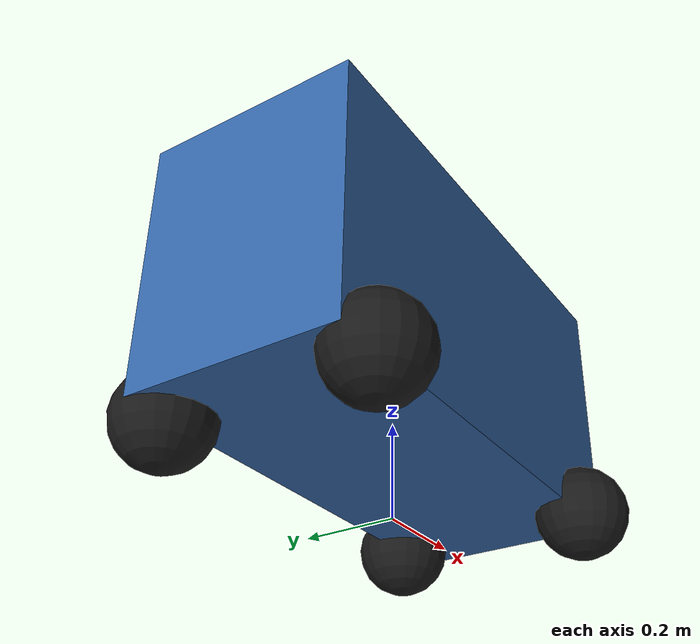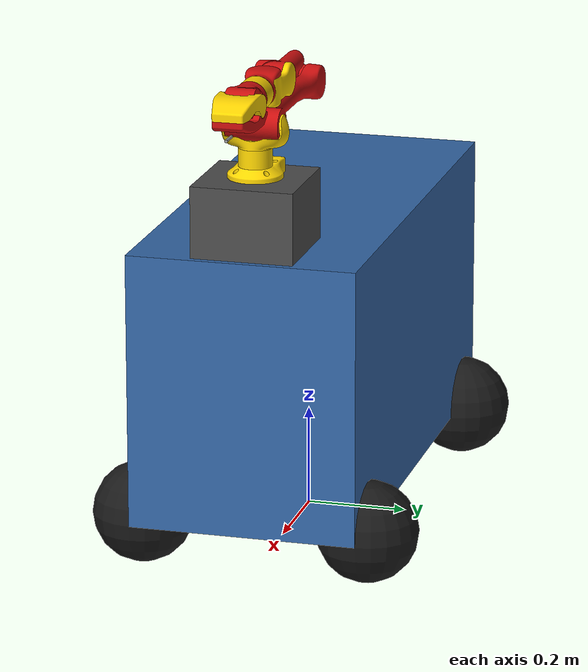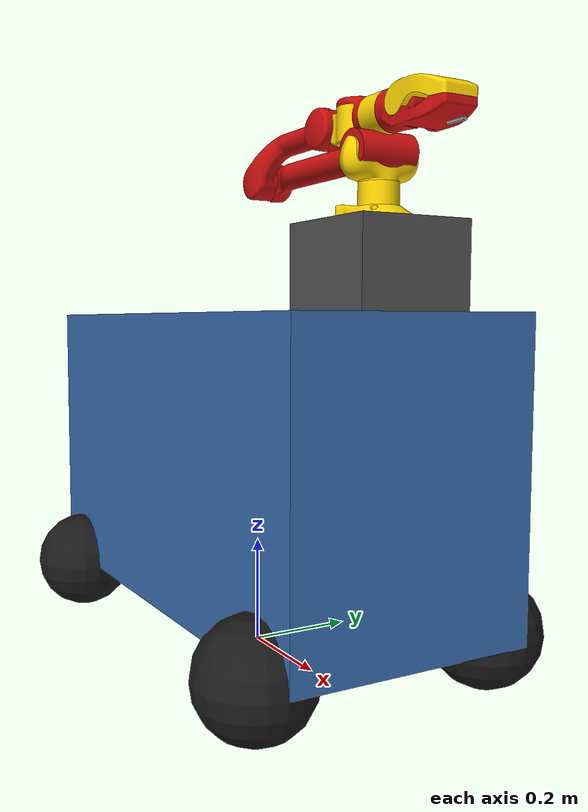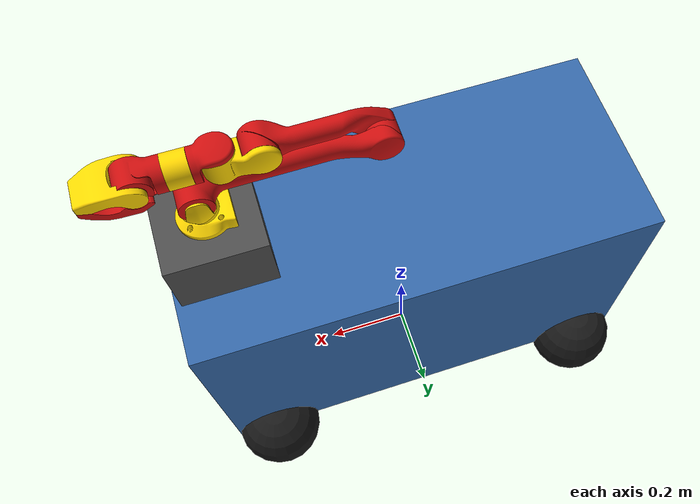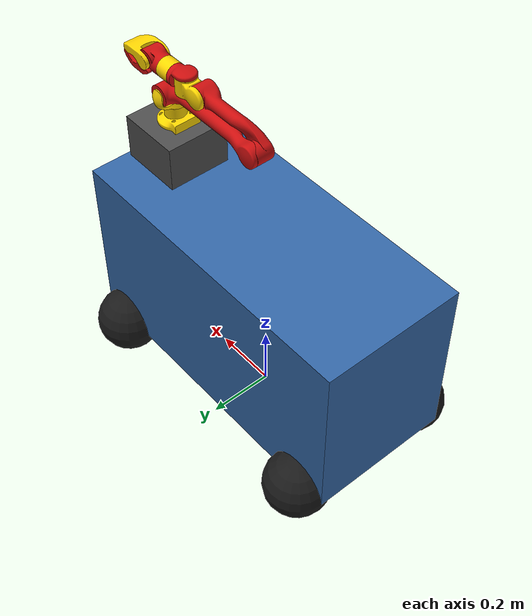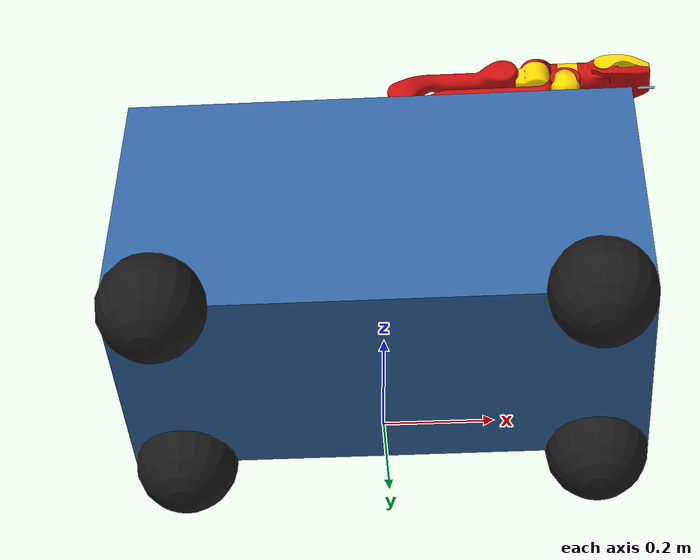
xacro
<?xml version="1.0"?>
<robot name="mobile_z1" xmlns:xacro="http://www.ros.org/wiki/xacro">

  <xacro:property name="default_mount_height"  value="0.14"/>

  <xacro:arg name="controllers_yaml"  default="/tmp/mobile_z1_controllers.yaml"/>
  <xacro:arg name="namespace"         default="/robot"/>
  <xacro:arg name="cmd_vel_topic"     default="cmd_vel"/>
  <xacro:arg name="cameras_on"        default="false"/>

  <!-- 1. Платформа -->
  <xacro:include filename="$(find mobile_base_model)/urdf/mobile_base_macro.urdf.xacro"/>
  <xacro:mobile_base prefix="" mount_height="${default_mount_height}" cameras_on="$(arg cameras_on)"/>

  <!-- 2. Z1 на крышке -->
  <xacro:include filename="$(find z1_model)/urdf/z1_arm_macro.urdf.xacro"/>
  <xacro:z1_arm prefix=""
                parent="z1_mount"
                xyz="0 0 ${default_mount_height / 2.0}" rpy="0 0 0"
                use_gripper="true"/>

  <!-- 3. ros2_control блок ТОЛЬКО для Z1 -->
  <xacro:z1_ros2_control prefix="" use_gripper="true" name="Z1Hardware"/>

  <!-- 4. gz_ros2_control: 7 джойнтов Z1 -->
  <gazebo>
    <plugin name="gz_ros2_control::GazeboSimROS2ControlPlugin"
            filename="gz_ros2_control-system">
      <parameters>$(arg controllers_yaml)</parameters>
      <ros>
        <namespace>$(arg namespace)</namespace>
      </ros>
    </plugin>
  </gazebo>

  <!-- 5. VelocityControl + OdometryPublisher для платформы -->
  <xacro:velocity_control_plugin
      prefix=""
      topic="$(arg cmd_vel_topic)"
      odom_topic="odom"
      tf_topic="tf"
      frame_id="odom"
      child_frame_id="base_footprint"/>

</robot>

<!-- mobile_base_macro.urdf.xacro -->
<robot xmlns:xacro="http://www.ros.org/wiki/xacro">

  <!-- ====== Параметры по умолчанию ====== -->
  <xacro:property name="default_base_l"        value="1.00"/>
  <xacro:property name="default_base_w"        value="0.45"/>
  <xacro:property name="default_base_h"        value="0.545"/>
  <xacro:property name="default_base_mass"     value="30.0"/>
  <xacro:property name="default_wheel_radius"  value="0.10"/>
  <xacro:property name="default_wheel_thick"   value="0.050"/>
  <xacro:property name="default_wheel_mass"    value="1.0"/>
  <xacro:property name="default_wheel_x"       value="${default_base_l / 2.0 - default_wheel_radius}"/>
  <xacro:property name="default_wheel_y"       value="${default_base_w / 2.0}"/>
  <xacro:property name="default_mount_height"  value="0.14"/>
  <xacro:property name="default_mount_lingth"  value="0.2"/>
  <xacro:property name="default_mount_x"       value="${(default_base_l - default_mount_lingth) / 2.0}"/>

  <xacro:property name="lidar_offset_x"       value="0.013"/>
  <xacro:property name="default_cameras_on"   value="false"/>

  <!-- ====== Локальный макрос: кастер-шарик с нулевым трением ====== -->

  <xacro:macro name="caster_ball" params="prefix name xyz mass radius">
    <xacro:property name="ball_inertia" value="${ (2/5) * mass * radius * radius }"/>
    <link name="${prefix}caster_${name}">
      <visual>
        <origin xyz="0 0 0" rpy="0 0 0"/>
        <geometry>
          <sphere radius="${radius}"/>
        </geometry>
        <material name="${prefix}wheel_mat">
          <color rgba="0.10 0.10 0.10 1.0"/>
        </material>
      </visual>

      <collision>
        <geometry>
          <sphere radius="${radius}"/>
        </geometry>
        <surface>
          <friction>
            <ode>
              <mu>0.00001</mu>
              <mu2>0.00001</mu2>
            </ode>
          </friction>
        </surface>
      </collision>
      <inertial>
        <mass value="${mass}"/>
        <inertia ixx="${ball_inertia}" iyy="${ball_inertia}" izz="${ball_inertia}" ixy="0" ixz="0" iyz="0"/>
      </inertial>
    </link>
    <joint name="${prefix}caster_${name}_joint" type="fixed">
      <parent link="${prefix}base_link"/>
      <child  link="${prefix}caster_${name}"/>
      <origin xyz="${xyz}"/>
    </joint>
    <gazebo reference="${prefix}caster_${name}">
      <visual>
        <material>
          <ambient>0.05 0.05 0.05 1</ambient>
          <diffuse>0.10 0.10 0.10 1</diffuse>
        </material>
      </visual>
      <mu1>0.00001</mu1>
      <mu2>0.00001</mu2>
    </gazebo>
  </xacro:macro>

  <!-- ====== ОСНОВНОЙ МАКРОС ПЛАТФОРМЫ ====== -->
  <xacro:macro name="mobile_base"
               params="prefix:=''
                       base_l:=${default_base_l}
                       base_w:=${default_base_w}
                       base_h:=${default_base_h}
                       base_mass:=${default_base_mass}
                       wheel_radius:=${default_wheel_radius}
                       wheel_thick:=${default_wheel_thick}
                       wheel_mass:=${default_wheel_mass}
                       wheel_x:=${default_wheel_x}
                       wheel_y:=${default_wheel_y}
                       mount_height:=${default_mount_height}
                       mount_height:=${default_mount_height}
                       cameras_on:=${default_cameras_on}">

    <!-- ================== base_footprint (на полу) ================== -->
    <link name="${prefix}base_footprint"/>

    <joint name="${prefix}base_footprint_joint" type="fixed">
      <parent link="${prefix}base_footprint"/>
      <child  link="${prefix}base_link"/>
      <origin xyz="0 0 ${wheel_radius + base_h/2.0}" rpy="0 0 0"/>
    </joint>

    <!-- ================== base_link (корпус) ================== -->
    <link name="${prefix}base_link">
      <visual>
        <origin xyz="0 0 0" rpy="0 0 0"/>
        <geometry>
          <box size="${base_l} ${base_w} ${base_h}"/>
        </geometry>
        <material name="${prefix}base_mat">
          <color rgba="0.20 0.40 0.65 1.0"/>
        </material>
      </visual>
      <collision>
        <origin xyz="0 0 0" rpy="0 0 0"/>
        <geometry>
          <box size="${base_l} ${base_w} ${base_h}"/>
        </geometry>
      </collision>
      <inertial>
        <origin xyz="0 0 0" rpy="0 0 0"/>
        <mass value="${base_mass}"/>
        <inertia
          ixx="${base_mass*(base_w*base_w + base_h*base_h)/12.0}"
          iyy="${base_mass*(base_l*base_l + base_h*base_h)/12.0}"
          izz="${base_mass*(base_l*base_l + base_w*base_w)/12.0}"
          ixy="0" ixz="0" iyz="0"/>
      </inertial>
    </link>

    <gazebo reference="${prefix}base_link">
      <!-- Низкое трение корпуса по самому себе - на случай, если уголок
           коснётся земли при наклоне. -->
      <mu1>0.1</mu1>
      <mu2>0.1</mu2>
      <visual>
        <material>
          <diffuse>0.20 0.40 0.65 1</diffuse>
          <specular>0.10 0.10 0.10 1</specular>
        </material>
      </visual>
    </gazebo>

    <!-- ================== z1_mount: площадка под Z1 ================== -->
    <link name="${prefix}z1_mount">
      <visual>
        <origin xyz="0 0 0" rpy="0 0 0"/>
        <geometry>
          <box size="0.20 0.20 ${mount_height}"/>
        </geometry>
        <material name="${prefix}mount_mat">
          <color rgba="0.30 0.30 0.30 1.0"/>
        </material>
      </visual>
      <collision>
        <origin xyz="0 0 0" rpy="0 0 0"/>
        <geometry>
          <box size="0.20 0.20 ${mount_height}"/>
        </geometry>
      </collision>
      <inertial>
        <mass value="0.5"/>
        <inertia ixx="0.002" iyy="0.002" izz="0.002" ixy="0" ixz="0" iyz="0"/>
      </inertial>
    </link>

    <joint name="${prefix}z1_mount_joint" type="fixed">
      <parent link="${prefix}base_link"/>
      <child  link="${prefix}z1_mount"/>
      <origin xyz="${default_mount_x - lidar_offset_x} 0 ${base_h/2.0 + mount_height/2.0}" rpy="0 0 0"/>
    </joint>

    <!-- ================== 4 ВИЗУАЛЬНЫХ колеса ================== -->
    <xacro:property name="wheel_z_local" value="${-base_h/2.0}"/>

    <!-- ================== 3 кастера-шарика ================== -->

    <xacro:caster_ball prefix="${prefix}" name="fl"
                       xyz="${ wheel_x}  ${ wheel_y} ${-base_h / 2.0}"
                       mass="${wheel_mass}" radius="${wheel_radius}"/>
    <xacro:caster_ball prefix="${prefix}" name="fr"
                       xyz="${ wheel_x} ${-wheel_y} ${-base_h / 2.0}"
                       mass="${wheel_mass}" radius="${wheel_radius}"/>

    <xacro:caster_ball prefix="${prefix}" name="rl"
                       xyz="${-wheel_x}  ${ wheel_y} ${-base_h / 2.0}"
                       mass="${wheel_mass}" radius="${wheel_radius}"/>
    <xacro:caster_ball prefix="${prefix}" name="rr"
                       xyz="${-wheel_x} ${-wheel_y} ${-base_h / 2.0}"
                       mass="${wheel_mass}" radius="${wheel_radius}"/>

    <!-- Добавляем камеру -->
    <xacro:if value="${cameras_on == 'true'}">
      <link name="${prefix}my_camera_link">
        <visual>
          <geometry><box size="0.01 0.01 0.01"/></geometry>
        </visual>
        <collision>
          <geometry><box size="0.01 0.01 0.01"/></geometry>
        </collision>
        <inertial>
          <mass value="0.01"/>
          <origin xyz="0 0 0"/>
          <inertia ixx="1e-5" ixy="0" ixz="0" iyy="1e-5" iyz="0" izz="1e-5"/>
        </inertial>
      </link>

      <joint name="${prefix}my_camera_joint" type="fixed">
        <parent link="${prefix}base_link"/>
        <child link="${prefix}my_camera_link"/>
        <origin xyz="${base_l / 2.0 - lidar_offset_x} 0.0 ${base_h / 2.0 + default_mount_height}" rpy="0 -0.837468 0"/>
      </joint>

      <link name="${prefix}my_camera_optical_frame"/>
      <joint name="${prefix}my_camera_optical_joint" type="fixed">
        <parent link="${prefix}my_camera_link"/>
        <child link="${prefix}my_camera_optical_frame"/>
        <origin xyz="0 0 0" rpy="-1.5708 0 -1.5708"/>
      </joint>

      <gazebo reference="${prefix}my_camera_link">
        <sensor name="${prefix}sensor_my_camera" type="camera">
          <always_on>1</always_on>
          <update_rate>30</update_rate>
          <visualize>true</visualize>
          <topic>${prefix}sensor_my_camera/raw_img</topic>
          <camera_info_topic>${prefix}my_camera_info</camera_info_topic>
          <optical_frame_id>${prefix}my_camera_optical_frame</optical_frame_id>
          <camera>
            <vertical_fov>0.733038</vertical_fov>
            <image>
              <width>2160</width>
              <height>3840</height>
              <format>R8G8B8</format>
            </image>
            <clip>
              <near>0.3</near>
              <far>20.0</far>
            </clip>
          </camera>
        </sensor>
      </gazebo>
    </xacro:if>

  </xacro:macro>

  <xacro:macro name="velocity_control_plugin"
               params="prefix:=''
                       topic:='cmd_vel'
                       odom_topic:='odom'
                       tf_topic:='tf'
                       frame_id:='odom'
                       child_frame_id:='base_footprint'
                       odom_pub_frequency:='50'">
    <gazebo>
      <!-- 1. VelocityControl: cmd_vel напрямую в скорость base_link -->
      <plugin filename="gz-sim-velocity-control-system"
              name="gz::sim::systems::VelocityControl">
        <topic>${topic}</topic>
      </plugin>

      <!-- 2. OdometryPublisher: реальная поза base_link -> /odom + TF -->
      <plugin filename="gz-sim-odometry-publisher-system"
              name="gz::sim::systems::OdometryPublisher">
        <odom_frame>${frame_id}</odom_frame>
        <robot_base_frame>${prefix}base_link</robot_base_frame>
        <odom_publish_frequency>${odom_pub_frequency}</odom_publish_frequency>
        <odom_topic>${odom_topic}</odom_topic>
        <tf_topic>${tf_topic}</tf_topic>
        <dimensions>3</dimensions>
      </plugin>
    </gazebo>
  </xacro:macro>

</robot>

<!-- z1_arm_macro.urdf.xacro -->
<robot xmlns:xacro="http://www.ros.org/wiki/xacro">

  <!-- Параметры и материалы Z1 -->
  <xacro:include filename="const.xacro"/>
  <xacro:include filename="materials.xacro"/>
  <xacro:include filename="transmission.xacro"/>

  <xacro:macro name="z1_arm"
               params="prefix:='' parent:='world' xyz:='0 0 0' rpy:='0 0 0'
                       use_gripper:=true">

    <!-- Жёсткое крепление link00 к parent (заменяет старый base_static_joint от world). -->
    <joint name="${prefix}base_static_joint" type="fixed">
      <origin xyz="${xyz}" rpy="${rpy}"/>
      <parent link="${parent}"/>
      <child  link="${prefix}link00"/>
    </joint>

    <link name="${prefix}link00">
      <visual>
        <origin rpy="0 0 0" xyz="0 0 0"/>
        <geometry>
          <mesh filename="$(find z1_model)/meshes/visual/z1_Link00.dae" scale="1 1 1"/>
        </geometry>
        <material name="iron_gold"/>
      </visual>
      <collision>
        <geometry>
          <cylinder length="${motor_height}" radius="${motor_diameter}"/>
        </geometry>
        <origin rpy="0 0 0" xyz="0 0 ${motor_height/2.0}"/>
      </collision>
      <inertial>
        <origin rpy="0 0 0" xyz="${L00_ComX} ${L00_ComY} ${L00_ComZ}"/>
        <mass value="${L00_Mass}"/>
        <inertia ixx="${L00_Ixx}" ixy="${L00_Ixy}" ixz="${L00_Ixz}"
                 iyy="${L00_Iyy}" iyz="${L00_Iyz}" izz="${L00_Izz}"/>
      </inertial>
    </link>

    <joint name="${prefix}joint1" type="revolute">
      <origin rpy="0 0 0" xyz="0 0 0.0585"/>
      <parent link="${prefix}link00"/>
      <child  link="${prefix}link01"/>
      <axis xyz="0 0 1"/>
      <dynamics damping="${jointDamping}" friction="${jointFriction}"/>
      <limit effort="${torqueMax}" velocity="${velocityMax}"
             lower="${joint1_PositionMin}" upper="${joint1_PositionMax}"/>
    </joint>

    <link name="${prefix}link01">
      <visual>
        <origin rpy="0 0 0" xyz="0 0 0"/>
        <geometry>
          <mesh filename="$(find z1_model)/meshes/visual/z1_Link01.dae" scale="1 1 1"/>
        </geometry>
        <material name="iron_gold"/>
      </visual>
      <inertial>
        <origin rpy="0 0 0" xyz="${L01_ComX} ${L01_ComY} ${L01_ComZ}"/>
        <mass value="${L01_Mass}"/>
        <inertia ixx="${L01_Ixx}" ixy="${L01_Ixy}" ixz="${L01_Ixz}"
                 iyy="${L01_Iyy}" iyz="${L01_Iyz}" izz="${L01_Izz}"/>
      </inertial>
    </link>

    <joint name="${prefix}joint2" type="revolute">
      <origin rpy="0 0 0" xyz="0 0 0.045"/>
      <parent link="${prefix}link01"/>
      <child  link="${prefix}link02"/>
      <axis xyz="0 1 0"/>
      <dynamics damping="${2*jointDamping}" friction="${2*jointFriction}"/>
      <limit effort="${2*torqueMax}" velocity="${velocityMax}"
             lower="${joint2_PositionMin}" upper="${joint2_PositionMax}"/>
    </joint>

    <link name="${prefix}link02">
      <visual>
        <origin rpy="0 0 0" xyz="0 0 0"/>
        <geometry>
          <mesh filename="$(find z1_model)/meshes/visual/z1_Link02.dae" scale="1 1 1"/>
        </geometry>
        <material name="iron_red"/>
      </visual>
      <collision>
        <geometry><cylinder length="${2.0*motor_height}" radius="${motor_diameter}"/></geometry>
        <origin rpy="${PI/2.0} 0 0" xyz="0 0 0"/>
      </collision>
      <collision>
        <geometry><cylinder length="${arm1_height}" radius="${arm1_diameter}"/></geometry>
        <origin rpy="0 ${PI/2.0} 0" xyz="${-0.045-arm1_height/2.0} 0 0"/>
      </collision>
      <collision>
        <geometry><cylinder length="${motor_height}" radius="${motor_diameter}"/></geometry>
        <origin rpy="${PI/2.0} 0 0" xyz="-0.35 0 0"/>
      </collision>
      <inertial>
        <origin rpy="0 0 0" xyz="${L02_ComX} ${L02_ComY} ${L02_ComZ}"/>
        <mass value="${L02_Mass}"/>
        <inertia ixx="${L02_Ixx}" ixy="${L02_Ixy}" ixz="${L02_Ixz}"
                 iyy="${L02_Iyy}" iyz="${L02_Iyz}" izz="${L02_Izz}"/>
      </inertial>
    </link>

    <joint name="${prefix}joint3" type="revolute">
      <origin rpy="0 0 0" xyz="-0.35 0 0"/>
      <parent link="${prefix}link02"/>
      <child  link="${prefix}link03"/>
      <axis xyz="0 1 0"/>
      <dynamics damping="${jointDamping}" friction="${jointFriction}"/>
      <limit effort="${torqueMax}" velocity="${velocityMax}"
             lower="${joint3_PositionMin}" upper="${joint3_PositionMax}"/>
    </joint>

    <link name="${prefix}link03">
      <visual>
        <origin rpy="0 0 0" xyz="0 0 0"/>
        <geometry>
          <mesh filename="$(find z1_model)/meshes/visual/z1_Link03.dae" scale="1 1 1"/>
        </geometry>
        <material name="iron_red"/>
      </visual>
      <collision>
        <geometry><cylinder length="${arm2_height-0.01}" radius="${arm2_diameter}"/></geometry>
        <origin rpy="0 ${PI/2.0} 0" xyz="${0.065+arm2_height/2.0} 0 0.055"/>
      </collision>
      <collision>
        <geometry><cylinder length="0.059" radius="${motor_diameter}"/></geometry>
        <origin rpy="0 ${PI/2.0} ${PI/2.0}" xyz="${0.065+0.185-0.059/2.0} 0 0.055"/>
      </collision>
      <inertial>
        <origin rpy="0 0 0" xyz="${L03_ComX} ${L03_ComY} ${L03_ComZ}"/>
        <mass value="${L03_Mass}"/>
        <inertia ixx="${L03_Ixx}" ixy="${L03_Ixy}" ixz="${L03_Ixz}"
                 iyy="${L03_Iyy}" iyz="${L03_Iyz}" izz="${L03_Izz}"/>
      </inertial>
    </link>

    <joint name="${prefix}joint4" type="revolute">
      <origin rpy="0 0 0" xyz="0.218 0 0.057"/>
      <parent link="${prefix}link03"/>
      <child  link="${prefix}link04"/>
      <axis xyz="0 1 0"/>
      <dynamics damping="${jointDamping}" friction="${jointFriction}"/>
      <limit effort="${torqueMax}" velocity="${velocityMax}"
             lower="${joint4_PositionMin}" upper="${joint4_PositionMax}"/>
    </joint>

    <link name="${prefix}link04">
      <visual>
        <origin rpy="0 0 0" xyz="0 0 0"/>
        <geometry>
          <mesh filename="$(find z1_model)/meshes/visual/z1_Link04.dae" scale="1 1 1"/>
        </geometry>
        <material name="iron_gold"/>
      </visual>
      <collision>
        <geometry><cylinder length="${motor_height + 2*0.008}" radius="${motor_diameter}"/></geometry>
        <origin rpy="0 0 0" xyz="0.072 0 0"/>
      </collision>
      <inertial>
        <origin rpy="0 0 0" xyz="${L04_ComX} ${L04_ComY} ${L04_ComZ}"/>
        <mass value="${L04_Mass}"/>
        <inertia ixx="${L04_Ixx}" ixy="${L04_Ixy}" ixz="${L04_Ixz}"
                 iyy="${L04_Iyy}" iyz="${L04_Iyz}" izz="${L04_Izz}"/>
      </inertial>
    </link>

    <joint name="${prefix}joint5" type="revolute">
      <origin rpy="0 0 0" xyz="0.07 0.0 0.0"/>
      <parent link="${prefix}link04"/>
      <child  link="${prefix}link05"/>
      <axis xyz="0 0 1"/>
      <dynamics damping="${jointDamping}" friction="${jointFriction}"/>
      <limit effort="${torqueMax}" velocity="${velocityMax}"
             lower="${joint5_PositionMin}" upper="${joint5_PositionMax}"/>
    </joint>

    <link name="${prefix}link05">
      <visual>
        <origin rpy="0 0 0" xyz="0 0 0"/>
        <geometry>
          <mesh filename="$(find z1_model)/meshes/visual/z1_Link05.dae" scale="1 1 1"/>
        </geometry>
        <material name="iron_red"/>
      </visual>
      <inertial>
        <origin rpy="0 0 0" xyz="${L05_ComX} ${L05_ComY} ${L05_ComZ}"/>
        <mass value="${L05_Mass}"/>
        <inertia ixx="${L05_Ixx}" ixy="${L05_Ixy}" ixz="${L05_Ixz}"
                 iyy="${L05_Iyy}" iyz="${L05_Iyz}" izz="${L05_Izz}"/>
      </inertial>
    </link>

    <joint name="${prefix}joint6" type="revolute">
      <origin rpy="0 0 0" xyz="0.0492 0.0 0.0"/>
      <parent link="${prefix}link05"/>
      <child  link="${prefix}link06"/>
      <axis xyz="1 0 0"/>
      <dynamics damping="${jointDamping}" friction="${jointFriction}"/>
      <limit effort="${torqueMax}" velocity="${velocityMax}"
             lower="${joint6_PositionMin}" upper="${joint6_PositionMax}"/>
    </joint>

    <link name="${prefix}link06">
      <visual>
        <origin rpy="0 0 0" xyz="0 0 0"/>
        <geometry>
          <mesh filename="$(find z1_model)/meshes/visual/z1_Link06.dae" scale="1 1 1"/>
        </geometry>
        <material name="iron_gold"/>
      </visual>
      <collision>
        <geometry><cylinder length="${motor_height}" radius="${motor_diameter}"/></geometry>
        <origin rpy="0 ${PI/2.0} 0" xyz="${motor_height/2.0} 0 0"/>
      </collision>
      <inertial>
        <origin rpy="0 0 0" xyz="${L06_ComX} ${L06_ComY} ${L06_ComZ}"/>
        <mass value="${L06_Mass}"/>
        <inertia ixx="${L06_Ixx}" ixy="${L06_Ixy}" ixz="${L06_Ixz}"
                 iyy="${L06_Iyy}" iyz="${L06_Iyz}" izz="${L06_Izz}"/>
      </inertial>
    </link>

    <!-- Захват Unitree (опционально) -->
    <xacro:if value="${use_gripper}">
      <joint name="${prefix}gripperStator_joint" type="fixed">
        <origin rpy="0 0 0" xyz="0.051 0.0 0.0"/>
        <parent link="${prefix}link06"/>
        <child  link="${prefix}gripperStator"/>
      </joint>

      <link name="${prefix}gripperStator">
        <visual>
          <geometry>
            <mesh filename="$(find z1_model)/meshes/visual/stl_models/z1_GripperStator.stl" scale="1 1 1"/>
          </geometry>
          <material name="iron_red"/>
        </visual>
        <collision>
          <geometry>
            <mesh filename="$(find z1_model)/meshes/collision/z1_GripperStator.STL" scale="1 1 1"/>
          </geometry>
        </collision>
        <inertial>
          <origin rpy="0 0 0" xyz="${GripperStator_ComX} ${GripperStator_ComY} ${GripperStator_ComZ}"/>
          <mass value="${GripperStator_Mass}"/>
          <inertia ixx="${GripperStator_Ixx}" ixy="${GripperStator_Ixy}" ixz="${GripperStator_Ixz}"
                   iyy="${GripperStator_Iyy}" iyz="${GripperStator_Iyz}" izz="${GripperStator_Izz}"/>
        </inertial>
      </link>

      <!-- Нажимной элемент (Finger) -->
      <link name="z1_Gripper_finger">
        <inertial>
            <origin xyz="0.117494 0.0 -0.040887" rpy="0 0 0"/>
            <mass value="0.003286"/>
            <inertia
                ixx="0.0000000259" ixy="0.0" ixz="-0.0000000568"
                iyy="0.000001303" iyz="0.0"
                izz="0.000001293"/>
        </inertial>
        <visual>
            <origin xyz="0.139 0 -0.042" rpy="0 1.5708 0"/>
            <geometry>
                <cylinder length="0.036" radius="0.003"/>
            </geometry>
            <material name="grey"/>
        </visual>
        <collision>
            <origin xyz="0.139 0 -0.042" rpy="0 1.5708 0"/>
            <geometry>
                <!-- Рекомендуется использовать упрощенную геометрию для коллизий, но можно и stl -->
                <cylinder length="0.036" radius="0.003"/>

            </geometry>
        </collision>
      </link>

      <!-- Крепление нажимного элемента к статору схвата -->
      <joint name="gripper_stator_to_finger" type="fixed">
          <parent link="gripperStator"/> <!-- Замените на точное имя link'а вашего статора -->
          <child link="z1_Gripper_finger"/>
          <origin xyz="0 0 0" rpy="0 0 0"/> <!-- Позиции совпадают, как вы указали -->
      </joint>

      <joint name="${prefix}jointGripper" type="revolute">
        <origin rpy="0 0 0" xyz="0.049 0.0 0"/>
        <parent link="${prefix}gripperStator"/>
        <child  link="${prefix}gripperMover"/>
        <axis xyz="0 1 0"/>
        <dynamics damping="${jointDamping}" friction="${jointFriction}"/>
        <limit effort="${torqueMax}" velocity="${velocityMax}"
               lower="${Gripper_PositionMin}" upper="${Gripper_PositionMax}"/>
      </joint>

      <link name="${prefix}gripperMover">
        <visual>
          <geometry>
            <mesh filename="$(find z1_model)/meshes/visual/stl_models/z1_GripperMover.stl" scale="1 1 1"/>
          </geometry>
          <material name="iron_gold"/>
        </visual>
        <collision>
          <geometry>
            <mesh filename="$(find z1_model)/meshes/collision/z1_GripperMover.STL" scale="1 1 1"/>
          </geometry>
        </collision>
        <inertial>
          <origin rpy="0 0 0" xyz="${GripperMover_ComX} ${GripperMover_ComY} ${GripperMover_ComZ}"/>
          <mass value="${GripperMover_Mass}"/>
          <inertia ixx="${GripperMover_Ixx}" ixy="${GripperMover_Ixy}" ixz="${GripperMover_Ixz}"
                   iyy="${GripperMover_Iyy}" iyz="${GripperMover_Iyz}" izz="${GripperMover_Izz}"/>
        </inertial>
      </link>

      <xacro:motorTransmission name="${prefix}Gripper"/>
    </xacro:if>

    <xacro:motorTransmission name="${prefix}1"/>
    <xacro:motorTransmission name="${prefix}2"/>
    <xacro:motorTransmission name="${prefix}3"/>
    <xacro:motorTransmission name="${prefix}4"/>
    <xacro:motorTransmission name="${prefix}5"/>
    <xacro:motorTransmission name="${prefix}6"/>
  </xacro:macro>

  <xacro:macro name="z1_ros2_control"
               params="prefix:='' use_gripper:=true name:=Z1GazeboSystem">
    <ros2_control name="${name}" type="system">
      <hardware>
        <plugin>gz_ros2_control/GazeboSimSystem</plugin>
      </hardware>

      <xacro:joint_controller name="${prefix}joint1" initial_position="0.0"/>
      <xacro:joint_controller name="${prefix}joint2" initial_position="0.0"/>
      <xacro:joint_controller name="${prefix}joint3" initial_position="-0.035"/>
      <xacro:joint_controller name="${prefix}joint4" initial_position="-1.047"/>
      <xacro:joint_controller name="${prefix}joint5" initial_position="0.0"/>
      <xacro:joint_controller name="${prefix}joint6" initial_position="0.0"/>

      <xacro:if value="${use_gripper}">
        <xacro:joint_controller name="${prefix}jointGripper" initial_position="0.0"/>
      </xacro:if>
    </ros2_control>
  </xacro:macro>

  <!-- Локальный макрос-обёртка для регистрации одного джойнта в ros2_control.
       Effort-интерфейс в командах + position/velocity/effort в стейте. -->
  <xacro:macro name="joint_controller" params="name initial_position">
    <joint name="${name}">
      <command_interface name="effort">
        <param name="min">-33</param>
        <param name="max">33</param>
      </command_interface>
      <state_interface name="position">
        <param name="initial_value">${initial_position}</param>
      </state_interface>
      <state_interface name="velocity"/>
      <state_interface name="effort"/>
    </joint>
  </xacro:macro>

</robot>

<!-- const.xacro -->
<!-- name="z1_model" -->
<robot xmlns:xacro="http://www.ros.org/wiki/xacro">

    <!-- Constants for robot dimensions -->
    <xacro:property name="PI" value="3.1415926535897931"/>

    <!-- Link 00 -->
    <xacro:property name="L00_Mass" value="0.47247481"/>
    <xacro:property name="L00_ComX" value="-0.00334984"/>
    <xacro:property name="L00_ComY" value="-0.00013615"/>
    <xacro:property name="L00_ComZ" value="0.02495843"/>
    <xacro:property name="L00_Ixx" value="0.00037937"/>
    <xacro:property name="L00_Ixy" value="-0.00000035"/>
    <xacro:property name="L00_Ixz" value="-0.00001037"/>
    <xacro:property name="L00_Iyy" value="0.00041521"/>
    <xacro:property name="L00_Iyz" value="-0.00000099"/>
    <xacro:property name="L00_Izz" value="0.00053066"/>

    <!-- Link 01 -->
    <xacro:property name="L01_Mass" value="0.67332551"/>
    <xacro:property name="L01_ComX" value="0.00000247"/>
    <xacro:property name="L01_ComY" value="-0.00025198"/>
    <xacro:property name="L01_ComZ" value="0.02317169"/>
    <xacro:property name="L01_Ixx" value="0.00128328"/>
    <xacro:property name="L01_Ixy" value="-0.00000006"/>
    <xacro:property name="L01_Ixz" value="-0.00000040"/>
    <xacro:property name="L01_Iyy" value="0.00071931"/>
    <xacro:property name="L01_Iyz" value="0.00000050"/>
    <xacro:property name="L01_Izz" value="0.00083936"/>

    <!-- Link 02 -->
    <xacro:property name="L02_Mass" value="1.19132258"/>
    <xacro:property name="L02_ComX" value="-0.11012601"/>
    <xacro:property name="L02_ComY" value="0.00240029"/>
    <xacro:property name="L02_ComZ" value="0.00158266"/>
    <xacro:property name="L02_Ixx" value="0.00102138"/>
    <xacro:property name="L02_Ixy" value="0.00062358"/>
    <xacro:property name="L02_Ixz" value="0.00000513"/>
    <xacro:property name="L02_Iyy" value="0.02429457"/>
    <xacro:property name="L02_Iyz" value="-0.00000210"/>
    <xacro:property name="L02_Izz" value="0.02466114"/>

    <!-- Link 03 -->
    <xacro:property name="L03_Mass" value="0.83940874"/>
    <xacro:property name="L03_ComX" value="0.10609208"/>
    <xacro:property name="L03_ComY" value="-0.00541815"/>
    <xacro:property name="L03_ComZ" value="0.03476383"/>
    <xacro:property name="L03_Ixx" value="0.00108061"/>
    <xacro:property name="L03_Ixy" value="-0.00008669"/>
    <xacro:property name="L03_Ixz" value="-0.00208102"/>
    <xacro:property name="L03_Iyy" value="0.00954238"/>
    <xacro:property name="L03_Iyz" value="-0.00001332"/>
    <xacro:property name="L03_Izz" value="0.00886621"/>

    <!-- Link 04 -->
    <xacro:property name="L04_Mass" value="0.56404563"/>
    <xacro:property name="L04_ComX" value="0.04366681"/>
    <xacro:property name="L04_ComY" value="0.00364738"/>
    <xacro:property name="L04_ComZ" value="-0.00170192"/>
    <xacro:property name="L04_Ixx" value="0.00031576"/>
    <xacro:property name="L04_Ixy" value="0.00008130"/>
    <xacro:property name="L04_Ixz" value="0.00004091"/>
    <xacro:property name="L04_Iyy" value="0.00092996"/>
    <xacro:property name="L04_Iyz" value="-0.00000596"/>
    <xacro:property name="L04_Izz" value="0.00097912"/>

    <!-- Link 05 -->
    <xacro:property name="L05_Mass" value="0.38938492"/>
    <xacro:property name="L05_ComX" value="0.03121533"/>
    <xacro:property name="L05_ComY" value="0.0"/>
    <xacro:property name="L05_ComZ" value="0.00646316"/>
    <xacro:property name="L05_Ixx" value="0.00017605"/>
    <xacro:property name="L05_Ixy" value="0.00000040"/>
    <xacro:property name="L05_Ixz" value="0.00005689"/>
    <xacro:property name="L05_Iyy" value="0.00055896"/>
    <xacro:property name="L05_Iyz" value="-0.00000013"/>
    <xacro:property name="L05_Izz" value="0.00053860"/>

    <!-- Link 06 -->
    <xacro:property name="L06_Mass" value="0.28875807"/>
    <xacro:property name="L06_ComX" value="0.02415690"/>
    <xacro:property name="L06_ComY" value="-0.00017355"/>
    <xacro:property name="L06_ComZ" value="-0.00143876"/>
    <xacro:property name="L06_Ixx" value="0.00018328"/>
    <xacro:property name="L06_Ixy" value="0.00000122"/>
    <xacro:property name="L06_Ixz" value="0.00000054"/>
    <xacro:property name="L06_Iyy" value="0.00014750"/>
    <xacro:property name="L06_Iyz" value="0.00000008"/>
    <xacro:property name="L06_Izz" value="0.00014680"/>

    <!-- Link Gripper Stator -->
    <xacro:property name="GripperStator_Mass" value="0.52603655"/>
    <xacro:property name="GripperStator_ComX" value="0.04764427"/>
    <xacro:property name="GripperStator_ComY" value="-0.00035819"/>
    <xacro:property name="GripperStator_ComZ" value="-0.00249162"/>
    <xacro:property name="GripperStator_Ixx" value="0.00038683"/>
    <xacro:property name="GripperStator_Ixy" value="-0.00000359"/>
    <xacro:property name="GripperStator_Ixz" value="0.00007662"/>
    <xacro:property name="GripperStator_Iyy" value="0.00068614"/>
    <xacro:property name="GripperStator_Iyz" value="0.00000209"/>
    <xacro:property name="GripperStator_Izz" value="0.00066293"/>

    <!-- Link Gripper Mover -->
    <xacro:property name="GripperMover_Mass" value="0.27621302"/>
    <xacro:property name="GripperMover_ComX" value="0.01320633"/>
    <xacro:property name="GripperMover_ComY" value="0.00476708"/>
    <xacro:property name="GripperMover_ComZ" value="0.00380534"/>
    <xacro:property name="GripperMover_Ixx" value="0.00017716"/>
    <xacro:property name="GripperMover_Ixy" value="0.00001683"/>
    <xacro:property name="GripperMover_Ixz" value="-0.00001786"/>
    <xacro:property name="GripperMover_Iyy" value="0.00026787"/>
    <xacro:property name="GripperMover_Iyz" value="0.00000262"/>
    <xacro:property name="GripperMover_Izz" value="0.00035728"/>

    <!-- joint limits -->
    <xacro:property name="jointDamping" value="1.0"/>
    <xacro:property name="jointFriction" value="1.0"/>

    <xacro:property name="torqueMax" value="30.0"/>
    <xacro:property name="velocityMax" value="3.1415"/>
    <xacro:property name="joint1_PositionMin" value="${-PI*150/180}"/>
    <xacro:property name="joint1_PositionMax" value="${PI*150/180}"/>
    <xacro:property name="joint2_PositionMin" value="0.0"/>
    <xacro:property name="joint2_PositionMax" value="${PI*170/180}"/>
    <xacro:property name="joint3_PositionMin" value="${-PI*165/180}"/>
    <xacro:property name="joint3_PositionMax" value="0.0"/>
    <xacro:property name="joint4_PositionMin" value="${-PI*87/180}"/>
    <xacro:property name="joint4_PositionMax" value="${PI*87/180}"/>
    <xacro:property name="joint5_PositionMin" value="${-PI*77/180}"/>
    <xacro:property name="joint5_PositionMax" value="${PI*77/180}"/>
    <xacro:property name="joint6_PositionMin" value="${-PI*160/180}"/>
    <xacro:property name="joint6_PositionMax" value="${PI*160/180}"/>
    <xacro:property name="Gripper_PositionMin" value="${-PI*90/180}"/>
    <xacro:property name="Gripper_PositionMax" value="0.0"/>

    <!-- collision size -->
    <xacro:property name="motor_diameter" value="${0.065/2.0}"/>
    <xacro:property name="motor_height" value="0.051"/>
    <xacro:property name="arm1_diameter" value="${0.045/2.0}"/>
    <xacro:property name="arm1_height" value="0.235"/>
    <xacro:property name="arm2_diameter" value="${0.04/2.0}"/>
    <xacro:property name="arm2_height" value="0.126"/>
    <xacro:property name="gripperBox_X" value="0."/>
    <xacro:property name="gripperBox_Y" value="0."/>
    <xacro:property name="gripperBox_Z" value="0."/>
</robot>

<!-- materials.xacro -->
<robot xmlns:xacro="http://www.ros.org/wiki/xacro">

    <material name="iron_red">
        <color rgba="0.80 0.06 0.06 1.0"/>
    </material>
    <material name="iron_gold">
        <color rgba="1.00 0.84 0.00 1.0"/>
    </material>

</robot>
